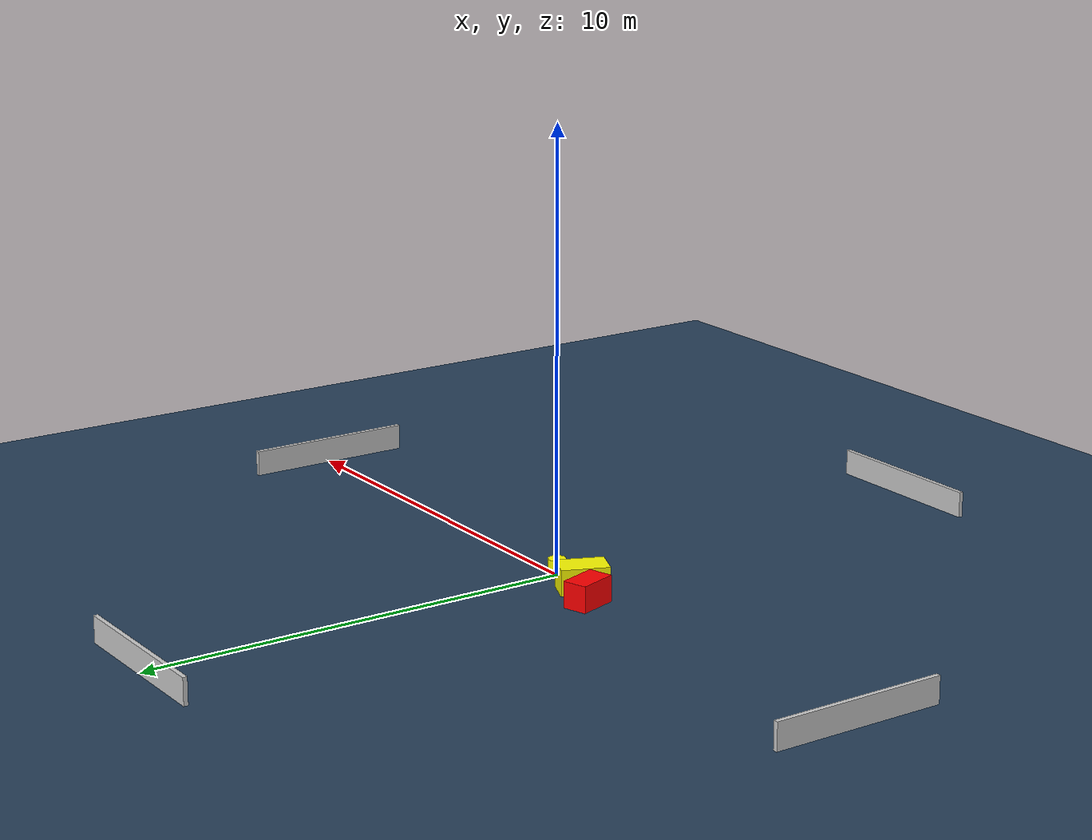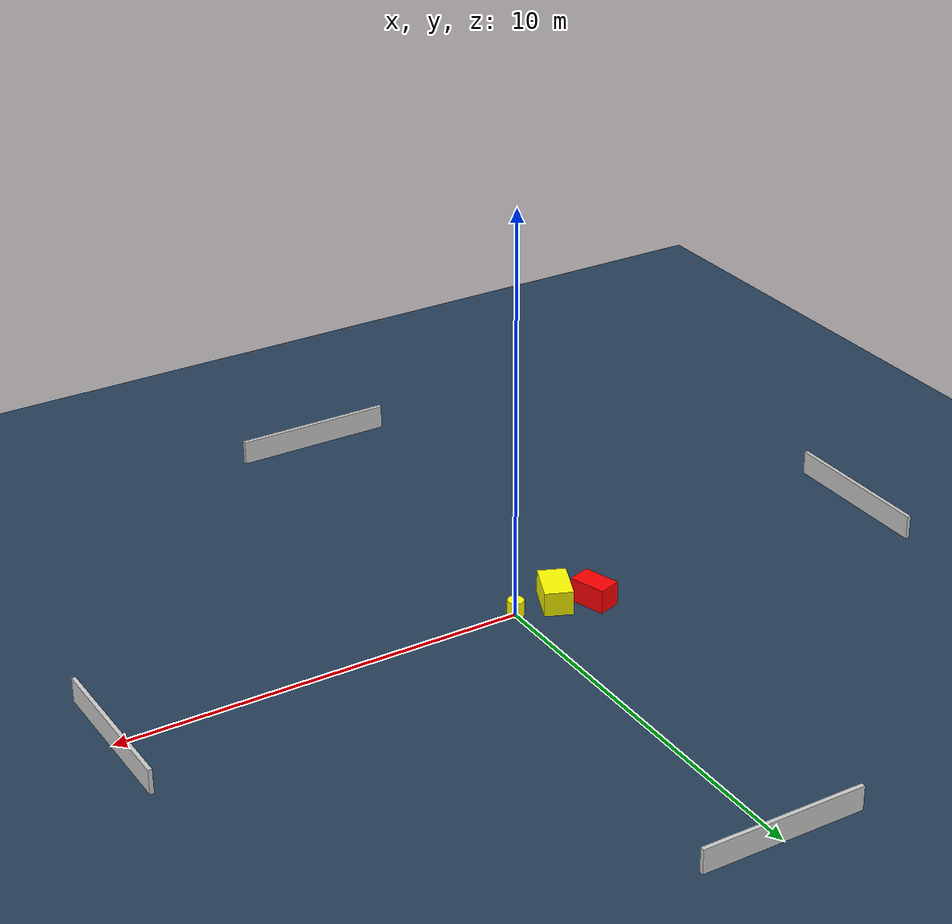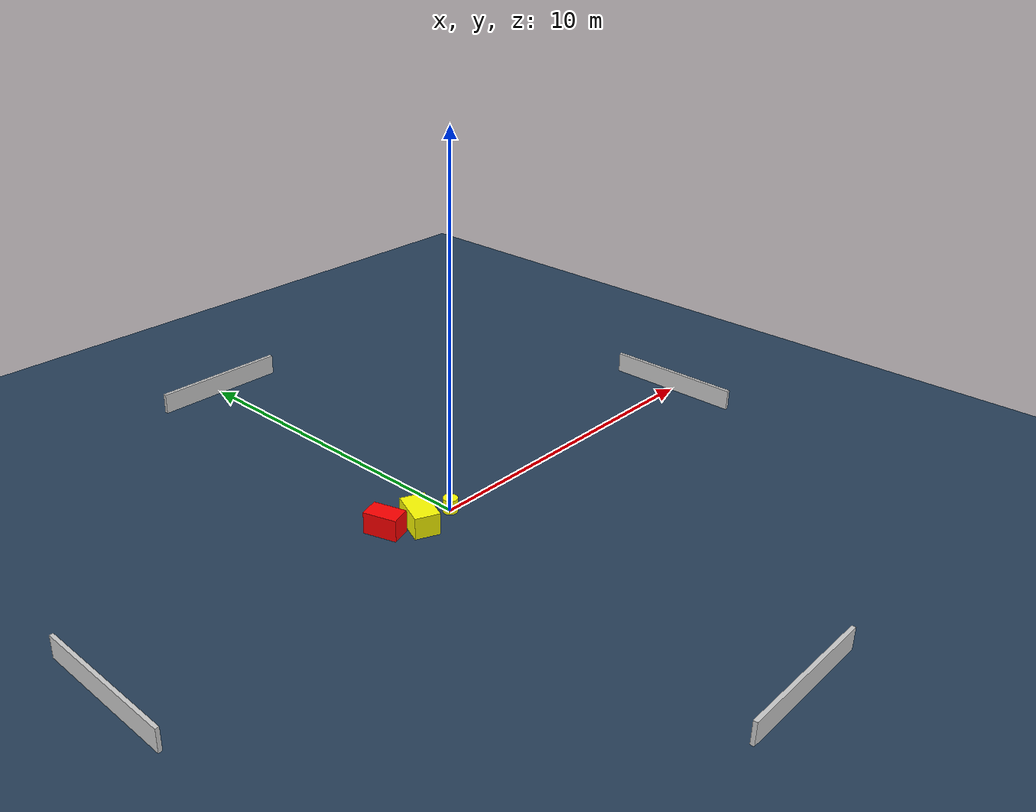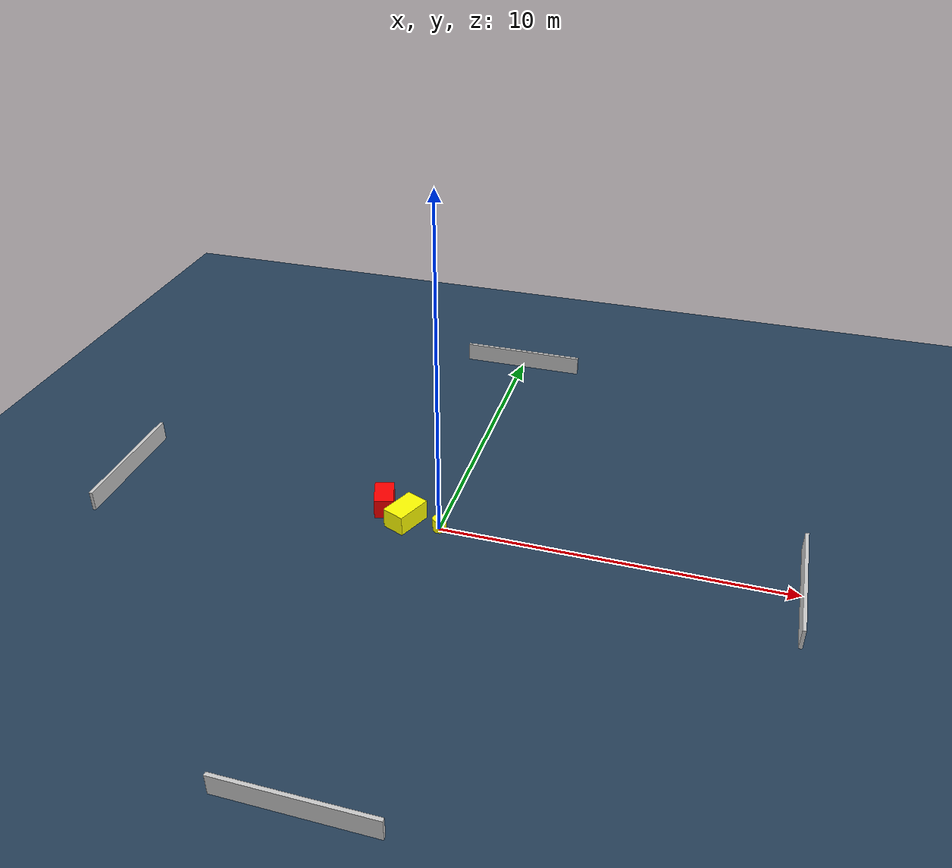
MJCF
<?xml version="1.0" ?>
<mujoco model="generated_environment">
  <option timestep="0.01" integrator="RK4" cone="elliptic"/>
  <default>
    <geom density="1"/>
  </default>
  <asset>
    <texture builtin="gradient" height="3072" name="skybox" rgb1="0.3 0.5 0.7" rgb2="0 0 0" type="skybox" width="512"/>
    <texture builtin="checker" height="300" name="groundplane" rgb1="0.2 0.3 0.4" rgb2="0.1 0.2 0.3" type="2d" width="300"/>
    <material name="groundplane" reflectance="0.2" texrepeat="5 5" texture="groundplane"/>
  </asset>
  <worldbody>
    <light dir="0 0 -1" directional="true" pos="0 0 1.5"/>
    <geom condim="3" friction="0.5 0.005 0.001" material="groundplane" name="floor" pos="0 0 0" size="0 0 0.05" type="plane"/>
    <body name="walls">
      <geom name="wall_1" condim="4" pos="-10.0 0.0 0.3" rgba="0.800000011920929 0.800000011920929 0.800000011920929 1.0" size="0.05 2.0 0.3" type="box"/>
      <geom name="wall_2" condim="4" pos="10.0 0.0 0.3" rgba="0.800000011920929 0.800000011920929 0.800000011920929 1.0" size="0.05 2.0 0.3" type="box"/>
      <geom name="wall_3" condim="4" pos="0.0 -10.0 0.3" rgba="0.800000011920929 0.800000011920929 0.800000011920929 1.0" size="2.0 0.05 0.3" type="box"/>
      <geom name="wall_4" condim="4" pos="0.0 10.0 0.3" rgba="0.800000011920929 0.800000011920929 0.800000011920929 1.0" size="2.0 0.05 0.3" type="box"/>
    </body>
    <body name="robot">
      <joint name="joint_x" type="slide" pos="0 0 0" axis="1 0 0"/>
      <joint name="joint_y" type="slide" pos="0 0 0" axis="0 1 0"/>
      <geom name="robot" type="cylinder" pos="0.0 0.0 0.2" size="0.2 0.2 0.0" mass="5.0" friction="1.0 0.005 0.0001" condim="4" rgba="1.0 1.0 0.0 1.0"/>
    </body>
    <body name="obstacle_1_movable">
      <geom name="obstacle_1_movable" condim="4" pos="-1.043750156050781 0.0544828918061571 0.3" euler="0 0 336.9845572150263" friction="0.0 0.005 0.001" rgba="1.0 1.0 0.0 1.0" size="0.3439210156625769 0.5408758926792585 0.3" type="box" mass="0.1"/>
      <joint type="free"/>
    </body>
    <body name="obstacle_2_static">
      <geom name="obstacle_2_static" condim="4" pos="-1.8418187494762592 0.48573321816495635 0.3" euler="0 0 17.74982153904576" friction="0.0 0.005 0.001" rgba="1.0 0.0 0.0 1.0" size="0.2845615054947358 0.46215880586048197 0.3" type="box"/>
    </body>
  </worldbody>
  <actuator>
    <motor name="actuator_x" joint="joint_x" gear="1" ctrlrange="-1 1"/>
    <motor name="actuator_y" joint="joint_y" gear="1" ctrlrange="-1 1"/>
  </actuator>
</mujoco>
